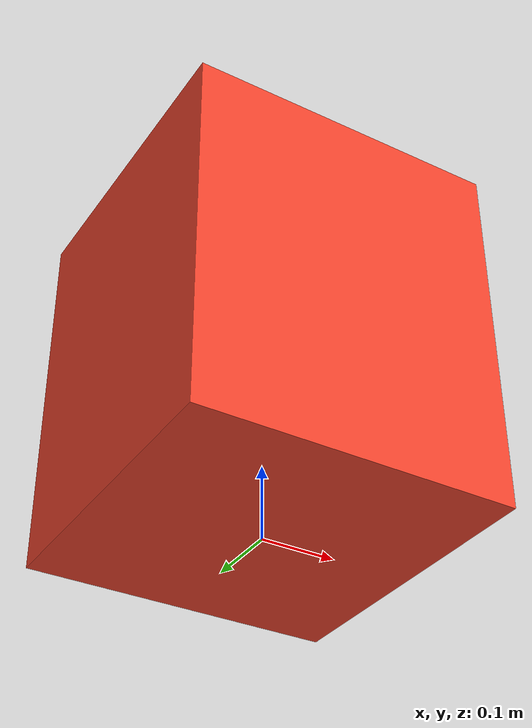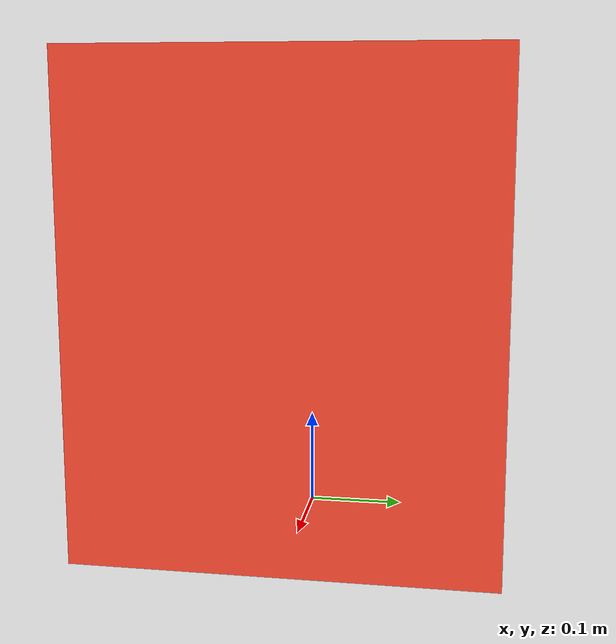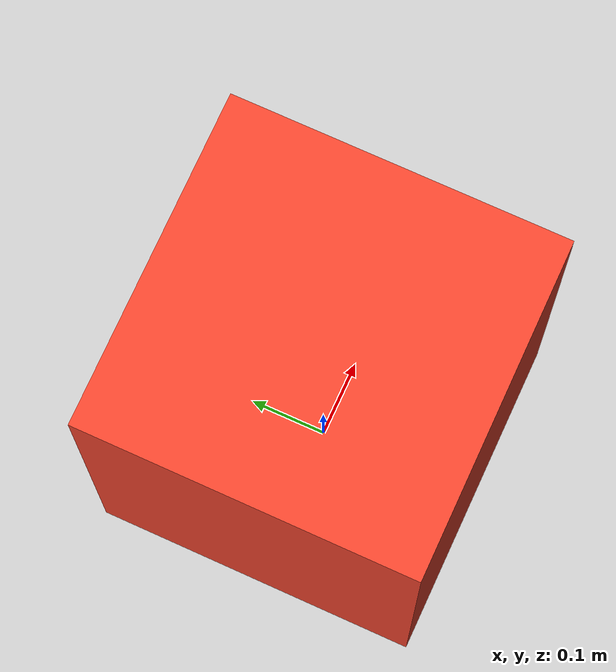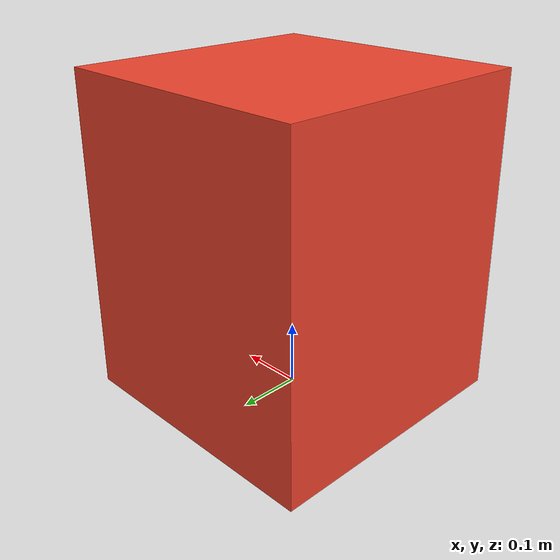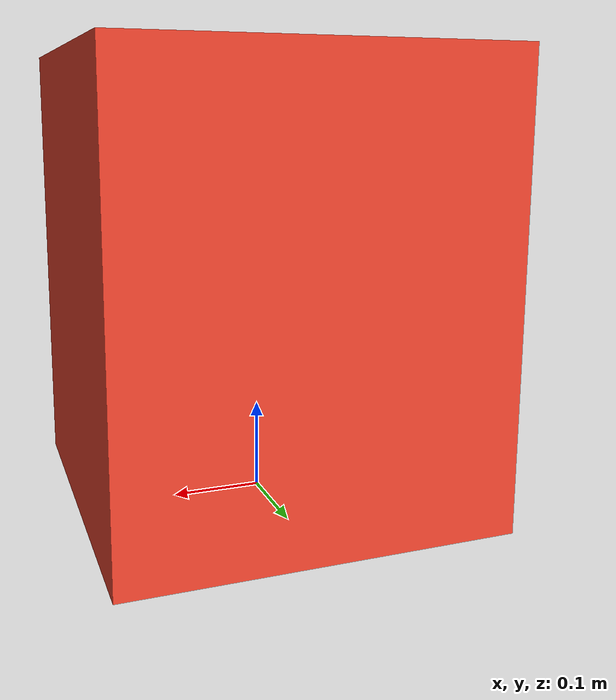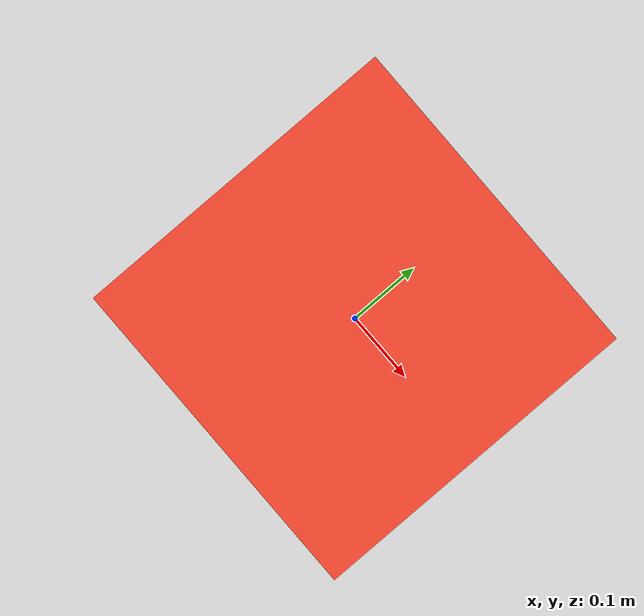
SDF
<?xml version="1.0"?>
<sdf version="1.6">
  <model name="dynamic_obstacle_box">
    <static>false</static>
    <pose>0 0 0.25 0 0 0</pose>
    <link name="body">
      <inertial>
        <mass>8.0</mass>
        <inertia>
          <ixx>0.15</ixx>
          <iyy>0.15</iyy>
          <izz>0.15</izz>
          <ixy>0.0</ixy>
          <ixz>0.0</ixz>
          <iyz>0.0</iyz>
        </inertia>
      </inertial>
      <collision name="collision">
        <geometry>
          <box>
            <size>0.42 0.42 0.50</size>
          </box>
        </geometry>
      </collision>
      <visual name="visual">
        <geometry>
          <box>
            <size>0.42 0.42 0.50</size>
          </box>
        </geometry>
        <material>
          <ambient>0.95 0.27 0.18 1.0</ambient>
          <diffuse>0.95 0.27 0.18 1.0</diffuse>
        </material>
      </visual>
    </link>
  </model>
</sdf>
